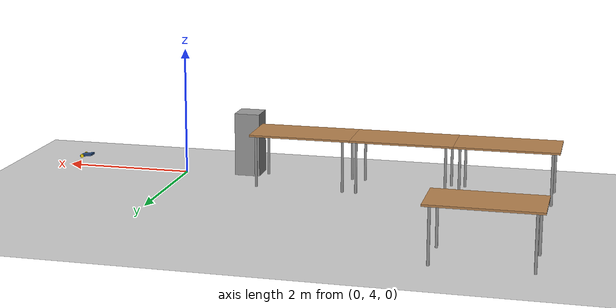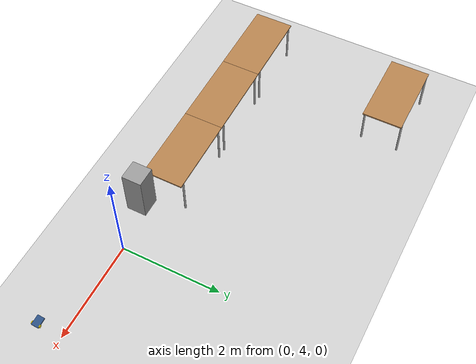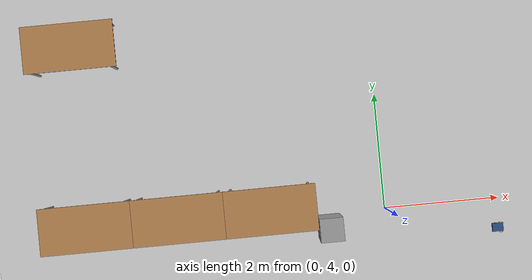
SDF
<sdf version="1.6">
 <world name="default">
  <model name="ground_plane">
   <static>1</static>
   <link name="link">
    <collision name="collision">
     <geometry><plane><normal>0 0 1</normal><size>100 100</size></plane></geometry>
     <surface><friction><ode><mu>100</mu><mu2>50</mu2></ode></friction></surface>
    </collision>
    <visual name="visual">
     <cast_shadows>0</cast_shadows>
     <geometry><plane><normal>0 0 1</normal><size>100 100</size></plane></geometry>
     <material>
      <script><uri>file://media/materials/scripts/gazebo.material</uri><name>Gazebo/Grey</name></script>
     </material>
    </visual>
   </link>
  </model>
  <model name="tablealt_0_clone_1">
   <link name="link">
    <inertial>
     <mass>1</mass>
     <inertia><ixx>1</ixx><ixy>0</ixy><ixz>0</ixz><iyy>1</iyy><iyz>0</iyz><izz>1</izz></inertia>
    </inertial>
    <visual name="back_right_leg">
     <pose>-0.68 -0.38 0.4 0 -0 0</pose>
     <geometry><cylinder><radius>0.02</radius><length>0.8</length></cylinder></geometry>
     <material>
      <script><uri>file://media/materials/scripts/gazebo.material</uri><name>Gazebo/Grey</name></script>
      <shader type="pixel"><normal_map>__default__</normal_map></shader>
      <ambient>0.3 0.3 0.3 1</ambient>
      <diffuse>0.7 0.7 0.7 1</diffuse>
      <specular>0.01 0.01 0.01 1</specular>
      <emissive>0 0 0 1</emissive>
     </material>
    </visual>
    <visual name="back_left_leg">
     <pose>-0.68 0.38 0.4 0 -0 0</pose>
     <geometry><cylinder><radius>0.02</radius><length>0.8</length></cylinder></geometry>
     <material>
      <script><uri>file://media/materials/scripts/gazebo.material</uri><name>Gazebo/Grey</name></script>
      <shader type="pixel"><normal_map>__default__</normal_map></shader>
      <ambient>0.3 0.3 0.3 1</ambient>
      <diffuse>0.7 0.7 0.7 1</diffuse>
      <specular>0.01 0.01 0.01 1</specular>
      <emissive>0 0 0 1</emissive>
     </material>
    </visual>
    <visual name="visual1">
     <pose>0 0 0.8 0 -0 0</pose>
     <geometry><box><size>1.57 0.8 0.03</size></box></geometry>
     <material>
      <script><uri>file://media/materials/scripts/gazebo.material</uri><name>Gazebo/Wood</name></script>
      <shader type="pixel"><normal_map>__default__</normal_map></shader>
      <ambient>0.92 0.92 0.68 1</ambient>
      <diffuse>1 1 1 1</diffuse>
      <specular>0.2 0.2 0.2 1</specular>
      <emissive>0 0 0 1</emissive>
     </material>
    </visual>
    <visual name="front_left_leg">
     <pose>0.68 0.38 0.4 0 -0 0</pose>
     <geometry><cylinder><radius>0.02</radius><length>0.8</length></cylinder></geometry>
     <material>
      <script><uri>file://media/materials/scripts/gazebo.material</uri><name>Gazebo/Grey</name></script>
      <shader type="pixel"><normal_map>__default__</normal_map></shader>
      <ambient>0.3 0.3 0.3 1</ambient>
      <diffuse>0.7 0.7 0.7 1</diffuse>
      <specular>0.01 0.01 0.01 1</specular>
      <emissive>0 0 0 1</emissive>
     </material>
    </visual>
    <visual name="front_right_leg">
     <pose>0.68 -0.38 0.4 0 -0 0</pose>
     <geometry><cylinder><radius>0.02</radius><length>0.8</length></cylinder></geometry>
     <material>
      <script><uri>file://media/materials/scripts/gazebo.material</uri><name>Gazebo/Grey</name></script>
      <shader type="pixel"><normal_map>__default__</normal_map></shader>
      <ambient>0.3 0.3 0.3 1</ambient>
      <diffuse>0.7 0.7 0.7 1</diffuse>
      <specular>0.01 0.01 0.01 1</specular>
      <emissive>0 0 0 1</emissive>
     </material>
    </visual>
    <collision name="front_right_leg">
     <pose>0.68 -0.38 0.4 0 -0 0</pose>
     <geometry><cylinder><radius>0.02</radius><length>0.8</length></cylinder></geometry>
     <surface>
      <friction>
       <ode><mu>1</mu><mu2>1</mu2><fdir1>0 0 0</fdir1><slip1>0</slip1><slip2>0</slip2></ode>
       <torsional>
        <coefficient>1</coefficient>
        <patch_radius>0</patch_radius>
        <surface_radius>0</surface_radius>
        <use_patch_radius>1</use_patch_radius>
        <ode><slip>0</slip></ode>
       </torsional>
      </friction>
      <bounce><restitution_coefficient>0</restitution_coefficient><threshold>1e+06</threshold></bounce>
      <contact>
       <collide_without_contact>0</collide_without_contact>
       <collide_without_contact_bitmask>1</collide_without_contact_bitmask>
       <collide_bitmask>1</collide_bitmask>
       <ode>
        <soft_cfm>0</soft_cfm>
        <soft_erp>0.2</soft_erp>
        <kp>1e+13</kp>
        <kd>1</kd>
        <max_vel>0.01</max_vel>
        <min_depth>0</min_depth>
       </ode>
       <bullet>
        <split_impulse>1</split_impulse>
        <split_impulse_penetration_threshold>-0.01</split_impulse_penetration_threshold>
        <soft_cfm>0</soft_cfm>
        <soft_erp>0.2</soft_erp>
        <kp>1e+13</kp>
        <kd>1</kd>
       </bullet>
      </contact>
     </surface>
    </collision>
    <collision name="surface">
     <pose>0 0 0.8 0 -0 0</pose>
     <geometry><box><size>1.5 0.8 0.03</size></box></geometry>
     <surface>
      <friction>
       <ode><mu>0.6</mu><mu2>0.6</mu2><fdir1>0 0 0</fdir1><slip1>0</slip1><slip2>0</slip2></ode>
       <torsional>
        <coefficient>1</coefficient>
        <patch_radius>0</patch_radius>
        <surface_radius>0</surface_radius>
        <use_patch_radius>1</use_patch_radius>
        <ode><slip>0</slip></ode>
       </torsional>
      </friction>
      <bounce><restitution_coefficient>0</restitution_coefficient><threshold>1e+06</threshold></bounce>
      <contact>
       <collide_without_contact>0</collide_without_contact>
       <collide_without_contact_bitmask>1</collide_without_contact_bitmask>
       <collide_bitmask>1</collide_bitmask>
       <ode>
        <soft_cfm>0</soft_cfm>
        <soft_erp>0.2</soft_erp>
        <kp>1e+13</kp>
        <kd>1</kd>
        <max_vel>0.01</max_vel>
        <min_depth>0</min_depth>
       </ode>
       <bullet>
        <split_impulse>1</split_impulse>
        <split_impulse_penetration_threshold>-0.01</split_impulse_penetration_threshold>
        <soft_cfm>0</soft_cfm>
        <soft_erp>0.2</soft_erp>
        <kp>1e+13</kp>
        <kd>1</kd>
       </bullet>
      </contact>
     </surface>
    </collision>
    <collision name="front_left_leg">
     <pose>0.68 0.38 0.4 0 -0 0</pose>
     <geometry><cylinder><radius>0.02</radius><length>0.8</length></cylinder></geometry>
     <surface>
      <friction>
       <ode><mu>1</mu><mu2>1</mu2><fdir1>0 0 0</fdir1><slip1>0</slip1><slip2>0</slip2></ode>
       <torsional>
        <coefficient>1</coefficient>
        <patch_radius>0</patch_radius>
        <surface_radius>0</surface_radius>
        <use_patch_radius>1</use_patch_radius>
        <ode><slip>0</slip></ode>
       </torsional>
      </friction>
      <bounce><restitution_coefficient>0</restitution_coefficient><threshold>1e+06</threshold></bounce>
      <contact>
       <collide_without_contact>0</collide_without_contact>
       <collide_without_contact_bitmask>1</collide_without_contact_bitmask>
       <collide_bitmask>1</collide_bitmask>
       <ode>
        <soft_cfm>0</soft_cfm>
        <soft_erp>0.2</soft_erp>
        <kp>1e+13</kp>
        <kd>1</kd>
        <max_vel>0.01</max_vel>
        <min_depth>0</min_depth>
       </ode>
       <bullet>
        <split_impulse>1</split_impulse>
        <split_impulse_penetration_threshold>-0.01</split_impulse_penetration_threshold>
        <soft_cfm>0</soft_cfm>
        <soft_erp>0.2</soft_erp>
        <kp>1e+13</kp>
        <kd>1</kd>
       </bullet>
      </contact>
     </surface>
    </collision>
    <collision name="back_left_leg">
     <pose>-0.68 0.38 0.4 0 -0 0</pose>
     <geometry><cylinder><radius>0.02</radius><length>0.8</length></cylinder></geometry>
     <surface>
      <friction>
       <ode><mu>1</mu><mu2>1</mu2><fdir1>0 0 0</fdir1><slip1>0</slip1><slip2>0</slip2></ode>
       <torsional>
        <coefficient>1</coefficient>
        <patch_radius>0</patch_radius>
        <surface_radius>0</surface_radius>
        <use_patch_radius>1</use_patch_radius>
        <ode><slip>0</slip></ode>
       </torsional>
      </friction>
      <bounce><restitution_coefficient>0</restitution_coefficient><threshold>1e+06</threshold></bounce>
      <contact>
       <collide_without_contact>0</collide_without_contact>
       <collide_without_contact_bitmask>1</collide_without_contact_bitmask>
       <collide_bitmask>1</collide_bitmask>
       <ode>
        <soft_cfm>0</soft_cfm>
        <soft_erp>0.2</soft_erp>
        <kp>1e+13</kp>
        <kd>1</kd>
        <max_vel>0.01</max_vel>
        <min_depth>0</min_depth>
       </ode>
       <bullet>
        <split_impulse>1</split_impulse>
        <split_impulse_penetration_threshold>-0.01</split_impulse_penetration_threshold>
        <soft_cfm>0</soft_cfm>
        <soft_erp>0.2</soft_erp>
        <kp>1e+13</kp>
        <kd>1</kd>
       </bullet>
      </contact>
     </surface>
    </collision>
    <collision name="back_right_leg">
     <pose>-0.68 -0.38 0.4 0 -0 0</pose>
     <geometry><cylinder><radius>0.02</radius><length>0.8</length></cylinder></geometry>
     <surface>
      <friction>
       <ode><mu>1</mu><mu2>1</mu2><fdir1>0 0 0</fdir1><slip1>0</slip1><slip2>0</slip2></ode>
       <torsional>
        <coefficient>1</coefficient>
        <patch_radius>0</patch_radius>
        <surface_radius>0</surface_radius>
        <use_patch_radius>1</use_patch_radius>
        <ode><slip>0</slip></ode>
       </torsional>
      </friction>
      <bounce><restitution_coefficient>0</restitution_coefficient><threshold>1e+06</threshold></bounce>
      <contact>
       <collide_without_contact>0</collide_without_contact>
       <collide_without_contact_bitmask>1</collide_without_contact_bitmask>
       <collide_bitmask>1</collide_bitmask>
       <ode>
        <soft_cfm>0</soft_cfm>
        <soft_erp>0.2</soft_erp>
        <kp>1e+13</kp>
        <kd>1</kd>
        <max_vel>0.01</max_vel>
        <min_depth>0</min_depth>
       </ode>
       <bullet>
        <split_impulse>1</split_impulse>
        <split_impulse_penetration_threshold>-0.01</split_impulse_penetration_threshold>
        <soft_cfm>0</soft_cfm>
        <soft_erp>0.2</soft_erp>
        <kp>1e+13</kp>
        <kd>1</kd>
       </bullet>
      </contact>
     </surface>
    </collision>
   </link>
   <static>1</static>
   <pose>-5.13 7.27 0 0 -0 0</pose>
  </model>
  <model name="tablealt_0_clone_4">
   <link name="link">
    <inertial>
     <mass>1</mass>
     <inertia><ixx>1</ixx><ixy>0</ixy><ixz>0</ixz><iyy>1</iyy><iyz>0</iyz><izz>1</izz></inertia>
    </inertial>
    <visual name="back_right_leg">
     <pose>-0.68 -0.38 0.4 0 -0 0</pose>
     <geometry><cylinder><radius>0.02</radius><length>0.8</length></cylinder></geometry>
     <material>
      <script><uri>file://media/materials/scripts/gazebo.material</uri><name>Gazebo/Grey</name></script>
      <shader type="pixel"><normal_map>__default__</normal_map></shader>
      <ambient>0.3 0.3 0.3 1</ambient>
      <diffuse>0.7 0.7 0.7 1</diffuse>
      <specular>0.01 0.01 0.01 1</specular>
      <emissive>0 0 0 1</emissive>
     </material>
    </visual>
    <visual name="back_left_leg">
     <pose>-0.68 0.38 0.4 0 -0 0</pose>
     <geometry><cylinder><radius>0.02</radius><length>0.8</length></cylinder></geometry>
     <material>
      <script><uri>file://media/materials/scripts/gazebo.material</uri><name>Gazebo/Grey</name></script>
      <shader type="pixel"><normal_map>__default__</normal_map></shader>
      <ambient>0.3 0.3 0.3 1</ambient>
      <diffuse>0.7 0.7 0.7 1</diffuse>
      <specular>0.01 0.01 0.01 1</specular>
      <emissive>0 0 0 1</emissive>
     </material>
    </visual>
    <visual name="visual1">
     <pose>0 0 0.8 0 -0 0</pose>
     <geometry><box><size>1.57 0.8 0.03</size></box></geometry>
     <material>
      <script><uri>file://media/materials/scripts/gazebo.material</uri><name>Gazebo/Wood</name></script>
      <shader type="pixel"><normal_map>__default__</normal_map></shader>
      <ambient>0.92 0.92 0.68 1</ambient>
      <diffuse>1 1 1 1</diffuse>
      <specular>0.2 0.2 0.2 1</specular>
      <emissive>0 0 0 1</emissive>
     </material>
    </visual>
    <visual name="front_left_leg">
     <pose>0.68 0.38 0.4 0 -0 0</pose>
     <geometry><cylinder><radius>0.02</radius><length>0.8</length></cylinder></geometry>
     <material>
      <script><uri>file://media/materials/scripts/gazebo.material</uri><name>Gazebo/Grey</name></script>
      <shader type="pixel"><normal_map>__default__</normal_map></shader>
      <ambient>0.3 0.3 0.3 1</ambient>
      <diffuse>0.7 0.7 0.7 1</diffuse>
      <specular>0.01 0.01 0.01 1</specular>
      <emissive>0 0 0 1</emissive>
     </material>
    </visual>
    <visual name="front_right_leg">
     <pose>0.68 -0.38 0.4 0 -0 0</pose>
     <geometry><cylinder><radius>0.02</radius><length>0.8</length></cylinder></geometry>
     <material>
      <script><uri>file://media/materials/scripts/gazebo.material</uri><name>Gazebo/Grey</name></script>
      <shader type="pixel"><normal_map>__default__</normal_map></shader>
      <ambient>0.3 0.3 0.3 1</ambient>
      <diffuse>0.7 0.7 0.7 1</diffuse>
      <specular>0.01 0.01 0.01 1</specular>
      <emissive>0 0 0 1</emissive>
     </material>
    </visual>
    <collision name="front_right_leg">
     <pose>0.68 -0.38 0.4 0 -0 0</pose>
     <geometry><cylinder><radius>0.02</radius><length>0.8</length></cylinder></geometry>
     <surface>
      <friction>
       <ode><mu>1</mu><mu2>1</mu2><fdir1>0 0 0</fdir1><slip1>0</slip1><slip2>0</slip2></ode>
       <torsional>
        <coefficient>1</coefficient>
        <patch_radius>0</patch_radius>
        <surface_radius>0</surface_radius>
        <use_patch_radius>1</use_patch_radius>
        <ode><slip>0</slip></ode>
       </torsional>
      </friction>
      <bounce><restitution_coefficient>0</restitution_coefficient><threshold>1e+06</threshold></bounce>
      <contact>
       <collide_without_contact>0</collide_without_contact>
       <collide_without_contact_bitmask>1</collide_without_contact_bitmask>
       <collide_bitmask>1</collide_bitmask>
       <ode>
        <soft_cfm>0</soft_cfm>
        <soft_erp>0.2</soft_erp>
        <kp>1e+13</kp>
        <kd>1</kd>
        <max_vel>0.01</max_vel>
        <min_depth>0</min_depth>
       </ode>
       <bullet>
        <split_impulse>1</split_impulse>
        <split_impulse_penetration_threshold>-0.01</split_impulse_penetration_threshold>
        <soft_cfm>0</soft_cfm>
        <soft_erp>0.2</soft_erp>
        <kp>1e+13</kp>
        <kd>1</kd>
       </bullet>
      </contact>
     </surface>
    </collision>
    <collision name="surface">
     <pose>0 0 0.8 0 -0 0</pose>
     <geometry><box><size>1.5 0.8 0.03</size></box></geometry>
     <surface>
      <friction>
       <ode><mu>0.6</mu><mu2>0.6</mu2><fdir1>0 0 0</fdir1><slip1>0</slip1><slip2>0</slip2></ode>
       <torsional>
        <coefficient>1</coefficient>
        <patch_radius>0</patch_radius>
        <surface_radius>0</surface_radius>
        <use_patch_radius>1</use_patch_radius>
        <ode><slip>0</slip></ode>
       </torsional>
      </friction>
      <bounce><restitution_coefficient>0</restitution_coefficient><threshold>1e+06</threshold></bounce>
      <contact>
       <collide_without_contact>0</collide_without_contact>
       <collide_without_contact_bitmask>1</collide_without_contact_bitmask>
       <collide_bitmask>1</collide_bitmask>
       <ode>
        <soft_cfm>0</soft_cfm>
        <soft_erp>0.2</soft_erp>
        <kp>1e+13</kp>
        <kd>1</kd>
        <max_vel>0.01</max_vel>
        <min_depth>0</min_depth>
       </ode>
       <bullet>
        <split_impulse>1</split_impulse>
        <split_impulse_penetration_threshold>-0.01</split_impulse_penetration_threshold>
        <soft_cfm>0</soft_cfm>
        <soft_erp>0.2</soft_erp>
        <kp>1e+13</kp>
        <kd>1</kd>
       </bullet>
      </contact>
     </surface>
    </collision>
    <collision name="front_left_leg">
     <pose>0.68 0.38 0.4 0 -0 0</pose>
     <geometry><cylinder><radius>0.02</radius><length>0.8</length></cylinder></geometry>
     <surface>
      <friction>
       <ode><mu>1</mu><mu2>1</mu2><fdir1>0 0 0</fdir1><slip1>0</slip1><slip2>0</slip2></ode>
       <torsional>
        <coefficient>1</coefficient>
        <patch_radius>0</patch_radius>
        <surface_radius>0</surface_radius>
        <use_patch_radius>1</use_patch_radius>
        <ode><slip>0</slip></ode>
       </torsional>
      </friction>
      <bounce><restitution_coefficient>0</restitution_coefficient><threshold>1e+06</threshold></bounce>
      <contact>
       <collide_without_contact>0</collide_without_contact>
       <collide_without_contact_bitmask>1</collide_without_contact_bitmask>
       <collide_bitmask>1</collide_bitmask>
       <ode>
        <soft_cfm>0</soft_cfm>
        <soft_erp>0.2</soft_erp>
        <kp>1e+13</kp>
        <kd>1</kd>
        <max_vel>0.01</max_vel>
        <min_depth>0</min_depth>
       </ode>
       <bullet>
        <split_impulse>1</split_impulse>
        <split_impulse_penetration_threshold>-0.01</split_impulse_penetration_threshold>
        <soft_cfm>0</soft_cfm>
        <soft_erp>0.2</soft_erp>
        <kp>1e+13</kp>
        <kd>1</kd>
       </bullet>
      </contact>
     </surface>
    </collision>
    <collision name="back_left_leg">
     <pose>-0.68 0.38 0.4 0 -0 0</pose>
     <geometry><cylinder><radius>0.02</radius><length>0.8</length></cylinder></geometry>
     <surface>
      <friction>
       <ode><mu>1</mu><mu2>1</mu2><fdir1>0 0 0</fdir1><slip1>0</slip1><slip2>0</slip2></ode>
       <torsional>
        <coefficient>1</coefficient>
        <patch_radius>0</patch_radius>
        <surface_radius>0</surface_radius>
        <use_patch_radius>1</use_patch_radius>
        <ode><slip>0</slip></ode>
       </torsional>
      </friction>
      <bounce><restitution_coefficient>0</restitution_coefficient><threshold>1e+06</threshold></bounce>
      <contact>
       <collide_without_contact>0</collide_without_contact>
       <collide_without_contact_bitmask>1</collide_without_contact_bitmask>
       <collide_bitmask>1</collide_bitmask>
       <ode>
        <soft_cfm>0</soft_cfm>
        <soft_erp>0.2</soft_erp>
        <kp>1e+13</kp>
        <kd>1</kd>
        <max_vel>0.01</max_vel>
        <min_depth>0</min_depth>
       </ode>
       <bullet>
        <split_impulse>1</split_impulse>
        <split_impulse_penetration_threshold>-0.01</split_impulse_penetration_threshold>
        <soft_cfm>0</soft_cfm>
        <soft_erp>0.2</soft_erp>
        <kp>1e+13</kp>
        <kd>1</kd>
       </bullet>
      </contact>
     </surface>
    </collision>
    <collision name="back_right_leg">
     <pose>-0.68 -0.38 0.4 0 -0 0</pose>
     <geometry><cylinder><radius>0.02</radius><length>0.8</length></cylinder></geometry>
     <surface>
      <friction>
       <ode><mu>1</mu><mu2>1</mu2><fdir1>0 0 0</fdir1><slip1>0</slip1><slip2>0</slip2></ode>
       <torsional>
        <coefficient>1</coefficient>
        <patch_radius>0</patch_radius>
        <surface_radius>0</surface_radius>
        <use_patch_radius>1</use_patch_radius>
        <ode><slip>0</slip></ode>
       </torsional>
      </friction>
      <bounce><restitution_coefficient>0</restitution_coefficient><threshold>1e+06</threshold></bounce>
      <contact>
       <collide_without_contact>0</collide_without_contact>
       <collide_without_contact_bitmask>1</collide_without_contact_bitmask>
       <collide_bitmask>1</collide_bitmask>
       <ode>
        <soft_cfm>0</soft_cfm>
        <soft_erp>0.2</soft_erp>
        <kp>1e+13</kp>
        <kd>1</kd>
        <max_vel>0.01</max_vel>
        <min_depth>0</min_depth>
       </ode>
       <bullet>
        <split_impulse>1</split_impulse>
        <split_impulse_penetration_threshold>-0.01</split_impulse_penetration_threshold>
        <soft_cfm>0</soft_cfm>
        <soft_erp>0.2</soft_erp>
        <kp>1e+13</kp>
        <kd>1</kd>
       </bullet>
      </contact>
     </surface>
    </collision>
   </link>
   <static>1</static>
   <pose>-5.13 4.19 0 0 -0 0</pose>
  </model>
  <model name="tablealt_0_clone_5">
   <link name="link">
    <inertial>
     <mass>1</mass>
     <inertia><ixx>1</ixx><ixy>0</ixy><ixz>0</ixz><iyy>1</iyy><iyz>0</iyz><izz>1</izz></inertia>
    </inertial>
    <visual name="back_right_leg">
     <pose>-0.68 -0.38 0.4 0 -0 0</pose>
     <geometry><cylinder><radius>0.02</radius><length>0.8</length></cylinder></geometry>
     <material>
      <script><uri>file://media/materials/scripts/gazebo.material</uri><name>Gazebo/Grey</name></script>
      <shader type="pixel"><normal_map>__default__</normal_map></shader>
      <ambient>0.3 0.3 0.3 1</ambient>
      <diffuse>0.7 0.7 0.7 1</diffuse>
      <specular>0.01 0.01 0.01 1</specular>
      <emissive>0 0 0 1</emissive>
     </material>
    </visual>
    <visual name="back_left_leg">
     <pose>-0.68 0.38 0.4 0 -0 0</pose>
     <geometry><cylinder><radius>0.02</radius><length>0.8</length></cylinder></geometry>
     <material>
      <script><uri>file://media/materials/scripts/gazebo.material</uri><name>Gazebo/Grey</name></script>
      <shader type="pixel"><normal_map>__default__</normal_map></shader>
      <ambient>0.3 0.3 0.3 1</ambient>
      <diffuse>0.7 0.7 0.7 1</diffuse>
      <specular>0.01 0.01 0.01 1</specular>
      <emissive>0 0 0 1</emissive>
     </material>
    </visual>
    <visual name="visual1">
     <pose>0 0 0.8 0 -0 0</pose>
     <geometry><box><size>1.57 0.8 0.03</size></box></geometry>
     <material>
      <script><uri>file://media/materials/scripts/gazebo.material</uri><name>Gazebo/Wood</name></script>
      <shader type="pixel"><normal_map>__default__</normal_map></shader>
      <ambient>0.92 0.92 0.68 1</ambient>
      <diffuse>1 1 1 1</diffuse>
      <specular>0.2 0.2 0.2 1</specular>
      <emissive>0 0 0 1</emissive>
     </material>
    </visual>
    <visual name="front_left_leg">
     <pose>0.68 0.38 0.4 0 -0 0</pose>
     <geometry><cylinder><radius>0.02</radius><length>0.8</length></cylinder></geometry>
     <material>
      <script><uri>file://media/materials/scripts/gazebo.material</uri><name>Gazebo/Grey</name></script>
      <shader type="pixel"><normal_map>__default__</normal_map></shader>
      <ambient>0.3 0.3 0.3 1</ambient>
      <diffuse>0.7 0.7 0.7 1</diffuse>
      <specular>0.01 0.01 0.01 1</specular>
      <emissive>0 0 0 1</emissive>
     </material>
    </visual>
    <visual name="front_right_leg">
     <pose>0.68 -0.38 0.4 0 -0 0</pose>
     <geometry><cylinder><radius>0.02</radius><length>0.8</length></cylinder></geometry>
     <material>
      <script><uri>file://media/materials/scripts/gazebo.material</uri><name>Gazebo/Grey</name></script>
      <shader type="pixel"><normal_map>__default__</normal_map></shader>
      <ambient>0.3 0.3 0.3 1</ambient>
      <diffuse>0.7 0.7 0.7 1</diffuse>
      <specular>0.01 0.01 0.01 1</specular>
      <emissive>0 0 0 1</emissive>
     </material>
    </visual>
    <collision name="front_right_leg">
     <pose>0.68 -0.38 0.4 0 -0 0</pose>
     <geometry><cylinder><radius>0.02</radius><length>0.8</length></cylinder></geometry>
     <surface>
      <friction>
       <ode><mu>1</mu><mu2>1</mu2><fdir1>0 0 0</fdir1><slip1>0</slip1><slip2>0</slip2></ode>
       <torsional>
        <coefficient>1</coefficient>
        <patch_radius>0</patch_radius>
        <surface_radius>0</surface_radius>
        <use_patch_radius>1</use_patch_radius>
        <ode><slip>0</slip></ode>
       </torsional>
      </friction>
      <bounce><restitution_coefficient>0</restitution_coefficient><threshold>1e+06</threshold></bounce>
      <contact>
       <collide_without_contact>0</collide_without_contact>
       <collide_without_contact_bitmask>1</collide_without_contact_bitmask>
       <collide_bitmask>1</collide_bitmask>
       <ode>
        <soft_cfm>0</soft_cfm>
        <soft_erp>0.2</soft_erp>
        <kp>1e+13</kp>
        <kd>1</kd>
        <max_vel>0.01</max_vel>
        <min_depth>0</min_depth>
       </ode>
       <bullet>
        <split_impulse>1</split_impulse>
        <split_impulse_penetration_threshold>-0.01</split_impulse_penetration_threshold>
        <soft_cfm>0</soft_cfm>
        <soft_erp>0.2</soft_erp>
        <kp>1e+13</kp>
        <kd>1</kd>
       </bullet>
      </contact>
     </surface>
    </collision>
    <collision name="surface">
     <pose>0 0 0.8 0 -0 0</pose>
     <geometry><box><size>1.5 0.8 0.03</size></box></geometry>
     <surface>
      <friction>
       <ode><mu>0.6</mu><mu2>0.6</mu2><fdir1>0 0 0</fdir1><slip1>0</slip1><slip2>0</slip2></ode>
       <torsional>
        <coefficient>1</coefficient>
        <patch_radius>0</patch_radius>
        <surface_radius>0</surface_radius>
        <use_patch_radius>1</use_patch_radius>
        <ode><slip>0</slip></ode>
       </torsional>
      </friction>
      <bounce><restitution_coefficient>0</restitution_coefficient><threshold>1e+06</threshold></bounce>
      <contact>
       <collide_without_contact>0</collide_without_contact>
       <collide_without_contact_bitmask>1</collide_without_contact_bitmask>
       <collide_bitmask>1</collide_bitmask>
       <ode>
        <soft_cfm>0</soft_cfm>
        <soft_erp>0.2</soft_erp>
        <kp>1e+13</kp>
        <kd>1</kd>
        <max_vel>0.01</max_vel>
        <min_depth>0</min_depth>
       </ode>
       <bullet>
        <split_impulse>1</split_impulse>
        <split_impulse_penetration_threshold>-0.01</split_impulse_penetration_threshold>
        <soft_cfm>0</soft_cfm>
        <soft_erp>0.2</soft_erp>
        <kp>1e+13</kp>
        <kd>1</kd>
       </bullet>
      </contact>
     </surface>
    </collision>
    <collision name="front_left_leg">
     <pose>0.68 0.38 0.4 0 -0 0</pose>
     <geometry><cylinder><radius>0.02</radius><length>0.8</length></cylinder></geometry>
     <surface>
      <friction>
       <ode><mu>1</mu><mu2>1</mu2><fdir1>0 0 0</fdir1><slip1>0</slip1><slip2>0</slip2></ode>
       <torsional>
        <coefficient>1</coefficient>
        <patch_radius>0</patch_radius>
        <surface_radius>0</surface_radius>
        <use_patch_radius>1</use_patch_radius>
        <ode><slip>0</slip></ode>
       </torsional>
      </friction>
      <bounce><restitution_coefficient>0</restitution_coefficient><threshold>1e+06</threshold></bounce>
      <contact>
       <collide_without_contact>0</collide_without_contact>
       <collide_without_contact_bitmask>1</collide_without_contact_bitmask>
       <collide_bitmask>1</collide_bitmask>
       <ode>
        <soft_cfm>0</soft_cfm>
        <soft_erp>0.2</soft_erp>
        <kp>1e+13</kp>
        <kd>1</kd>
        <max_vel>0.01</max_vel>
        <min_depth>0</min_depth>
       </ode>
       <bullet>
        <split_impulse>1</split_impulse>
        <split_impulse_penetration_threshold>-0.01</split_impulse_penetration_threshold>
        <soft_cfm>0</soft_cfm>
        <soft_erp>0.2</soft_erp>
        <kp>1e+13</kp>
        <kd>1</kd>
       </bullet>
      </contact>
     </surface>
    </collision>
    <collision name="back_left_leg">
     <pose>-0.68 0.38 0.4 0 -0 0</pose>
     <geometry><cylinder><radius>0.02</radius><length>0.8</length></cylinder></geometry>
     <surface>
      <friction>
       <ode><mu>1</mu><mu2>1</mu2><fdir1>0 0 0</fdir1><slip1>0</slip1><slip2>0</slip2></ode>
       <torsional>
        <coefficient>1</coefficient>
        <patch_radius>0</patch_radius>
        <surface_radius>0</surface_radius>
        <use_patch_radius>1</use_patch_radius>
        <ode><slip>0</slip></ode>
       </torsional>
      </friction>
      <bounce><restitution_coefficient>0</restitution_coefficient><threshold>1e+06</threshold></bounce>
      <contact>
       <collide_without_contact>0</collide_without_contact>
       <collide_without_contact_bitmask>1</collide_without_contact_bitmask>
       <collide_bitmask>1</collide_bitmask>
       <ode>
        <soft_cfm>0</soft_cfm>
        <soft_erp>0.2</soft_erp>
        <kp>1e+13</kp>
        <kd>1</kd>
        <max_vel>0.01</max_vel>
        <min_depth>0</min_depth>
       </ode>
       <bullet>
        <split_impulse>1</split_impulse>
        <split_impulse_penetration_threshold>-0.01</split_impulse_penetration_threshold>
        <soft_cfm>0</soft_cfm>
        <soft_erp>0.2</soft_erp>
        <kp>1e+13</kp>
        <kd>1</kd>
       </bullet>
      </contact>
     </surface>
    </collision>
    <collision name="back_right_leg">
     <pose>-0.68 -0.38 0.4 0 -0 0</pose>
     <geometry><cylinder><radius>0.02</radius><length>0.8</length></cylinder></geometry>
     <surface>
      <friction>
       <ode><mu>1</mu><mu2>1</mu2><fdir1>0 0 0</fdir1><slip1>0</slip1><slip2>0</slip2></ode>
       <torsional>
        <coefficient>1</coefficient>
        <patch_radius>0</patch_radius>
        <surface_radius>0</surface_radius>
        <use_patch_radius>1</use_patch_radius>
        <ode><slip>0</slip></ode>
       </torsional>
      </friction>
      <bounce><restitution_coefficient>0</restitution_coefficient><threshold>1e+06</threshold></bounce>
      <contact>
       <collide_without_contact>0</collide_without_contact>
       <collide_without_contact_bitmask>1</collide_without_contact_bitmask>
       <collide_bitmask>1</collide_bitmask>
       <ode>
        <soft_cfm>0</soft_cfm>
        <soft_erp>0.2</soft_erp>
        <kp>1e+13</kp>
        <kd>1</kd>
        <max_vel>0.01</max_vel>
        <min_depth>0</min_depth>
       </ode>
       <bullet>
        <split_impulse>1</split_impulse>
        <split_impulse_penetration_threshold>-0.01</split_impulse_penetration_threshold>
        <soft_cfm>0</soft_cfm>
        <soft_erp>0.2</soft_erp>
        <kp>1e+13</kp>
        <kd>1</kd>
       </bullet>
      </contact>
     </surface>
    </collision>
   </link>
   <static>1</static>
   <pose>-3.56 4.19 0 0 -0 0</pose>
  </model>
  <model name="tablealt_0_clone_6">
   <link name="link">
    <inertial>
     <mass>1</mass>
     <inertia><ixx>1</ixx><ixy>0</ixy><ixz>0</ixz><iyy>1</iyy><iyz>0</iyz><izz>1</izz></inertia>
    </inertial>
    <visual name="back_right_leg">
     <pose>-0.68 -0.38 0.4 0 -0 0</pose>
     <geometry><cylinder><radius>0.02</radius><length>0.8</length></cylinder></geometry>
     <material>
      <script><uri>file://media/materials/scripts/gazebo.material</uri><name>Gazebo/Grey</name></script>
      <shader type="pixel"><normal_map>__default__</normal_map></shader>
      <ambient>0.3 0.3 0.3 1</ambient>
      <diffuse>0.7 0.7 0.7 1</diffuse>
      <specular>0.01 0.01 0.01 1</specular>
      <emissive>0 0 0 1</emissive>
     </material>
    </visual>
    <visual name="back_left_leg">
     <pose>-0.68 0.38 0.4 0 -0 0</pose>
     <geometry><cylinder><radius>0.02</radius><length>0.8</length></cylinder></geometry>
     <material>
      <script><uri>file://media/materials/scripts/gazebo.material</uri><name>Gazebo/Grey</name></script>
      <shader type="pixel"><normal_map>__default__</normal_map></shader>
      <ambient>0.3 0.3 0.3 1</ambient>
      <diffuse>0.7 0.7 0.7 1</diffuse>
      <specular>0.01 0.01 0.01 1</specular>
      <emissive>0 0 0 1</emissive>
     </material>
    </visual>
    <visual name="visual1">
     <pose>0 0 0.8 0 -0 0</pose>
     <geometry><box><size>1.57 0.8 0.03</size></box></geometry>
     <material>
      <script><uri>file://media/materials/scripts/gazebo.material</uri><name>Gazebo/Wood</name></script>
      <shader type="pixel"><normal_map>__default__</normal_map></shader>
      <ambient>0.92 0.92 0.68 1</ambient>
      <diffuse>1 1 1 1</diffuse>
      <specular>0.2 0.2 0.2 1</specular>
      <emissive>0 0 0 1</emissive>
     </material>
    </visual>
    <visual name="front_left_leg">
     <pose>0.68 0.38 0.4 0 -0 0</pose>
     <geometry><cylinder><radius>0.02</radius><length>0.8</length></cylinder></geometry>
     <material>
      <script><uri>file://media/materials/scripts/gazebo.material</uri><name>Gazebo/Grey</name></script>
      <shader type="pixel"><normal_map>__default__</normal_map></shader>
      <ambient>0.3 0.3 0.3 1</ambient>
      <diffuse>0.7 0.7 0.7 1</diffuse>
      <specular>0.01 0.01 0.01 1</specular>
      <emissive>0 0 0 1</emissive>
     </material>
    </visual>
    <visual name="front_right_leg">
     <pose>0.68 -0.38 0.4 0 -0 0</pose>
     <geometry><cylinder><radius>0.02</radius><length>0.8</length></cylinder></geometry>
     <material>
      <script><uri>file://media/materials/scripts/gazebo.material</uri><name>Gazebo/Grey</name></script>
      <shader type="pixel"><normal_map>__default__</normal_map></shader>
      <ambient>0.3 0.3 0.3 1</ambient>
      <diffuse>0.7 0.7 0.7 1</diffuse>
      <specular>0.01 0.01 0.01 1</specular>
      <emissive>0 0 0 1</emissive>
     </material>
    </visual>
    <collision name="front_right_leg">
     <pose>0.68 -0.38 0.4 0 -0 0</pose>
     <geometry><cylinder><radius>0.02</radius><length>0.8</length></cylinder></geometry>
     <surface>
      <friction>
       <ode><mu>1</mu><mu2>1</mu2><fdir1>0 0 0</fdir1><slip1>0</slip1><slip2>0</slip2></ode>
       <torsional>
        <coefficient>1</coefficient>
        <patch_radius>0</patch_radius>
        <surface_radius>0</surface_radius>
        <use_patch_radius>1</use_patch_radius>
        <ode><slip>0</slip></ode>
       </torsional>
      </friction>
      <bounce><restitution_coefficient>0</restitution_coefficient><threshold>1e+06</threshold></bounce>
      <contact>
       <collide_without_contact>0</collide_without_contact>
       <collide_without_contact_bitmask>1</collide_without_contact_bitmask>
       <collide_bitmask>1</collide_bitmask>
       <ode>
        <soft_cfm>0</soft_cfm>
        <soft_erp>0.2</soft_erp>
        <kp>1e+13</kp>
        <kd>1</kd>
        <max_vel>0.01</max_vel>
        <min_depth>0</min_depth>
       </ode>
       <bullet>
        <split_impulse>1</split_impulse>
        <split_impulse_penetration_threshold>-0.01</split_impulse_penetration_threshold>
        <soft_cfm>0</soft_cfm>
        <soft_erp>0.2</soft_erp>
        <kp>1e+13</kp>
        <kd>1</kd>
       </bullet>
      </contact>
     </surface>
    </collision>
    <collision name="surface">
     <pose>0 0 0.8 0 -0 0</pose>
     <geometry><box><size>1.5 0.8 0.03</size></box></geometry>
     <surface>
      <friction>
       <ode><mu>0.6</mu><mu2>0.6</mu2><fdir1>0 0 0</fdir1><slip1>0</slip1><slip2>0</slip2></ode>
       <torsional>
        <coefficient>1</coefficient>
        <patch_radius>0</patch_radius>
        <surface_radius>0</surface_radius>
        <use_patch_radius>1</use_patch_radius>
        <ode><slip>0</slip></ode>
       </torsional>
      </friction>
      <bounce><restitution_coefficient>0</restitution_coefficient><threshold>1e+06</threshold></bounce>
      <contact>
       <collide_without_contact>0</collide_without_contact>
       <collide_without_contact_bitmask>1</collide_without_contact_bitmask>
       <collide_bitmask>1</collide_bitmask>
       <ode>
        <soft_cfm>0</soft_cfm>
        <soft_erp>0.2</soft_erp>
        <kp>1e+13</kp>
        <kd>1</kd>
        <max_vel>0.01</max_vel>
        <min_depth>0</min_depth>
       </ode>
       <bullet>
        <split_impulse>1</split_impulse>
        <split_impulse_penetration_threshold>-0.01</split_impulse_penetration_threshold>
        <soft_cfm>0</soft_cfm>
        <soft_erp>0.2</soft_erp>
        <kp>1e+13</kp>
        <kd>1</kd>
       </bullet>
      </contact>
     </surface>
    </collision>
    <collision name="front_left_leg">
     <pose>0.68 0.38 0.4 0 -0 0</pose>
     <geometry><cylinder><radius>0.02</radius><length>0.8</length></cylinder></geometry>
     <surface>
      <friction>
       <ode><mu>1</mu><mu2>1</mu2><fdir1>0 0 0</fdir1><slip1>0</slip1><slip2>0</slip2></ode>
       <torsional>
        <coefficient>1</coefficient>
        <patch_radius>0</patch_radius>
        <surface_radius>0</surface_radius>
        <use_patch_radius>1</use_patch_radius>
        <ode><slip>0</slip></ode>
       </torsional>
      </friction>
      <bounce><restitution_coefficient>0</restitution_coefficient><threshold>1e+06</threshold></bounce>
      <contact>
       <collide_without_contact>0</collide_without_contact>
       <collide_without_contact_bitmask>1</collide_without_contact_bitmask>
       <collide_bitmask>1</collide_bitmask>
       <ode>
        <soft_cfm>0</soft_cfm>
        <soft_erp>0.2</soft_erp>
        <kp>1e+13</kp>
        <kd>1</kd>
        <max_vel>0.01</max_vel>
        <min_depth>0</min_depth>
       </ode>
       <bullet>
        <split_impulse>1</split_impulse>
        <split_impulse_penetration_threshold>-0.01</split_impulse_penetration_threshold>
        <soft_cfm>0</soft_cfm>
        <soft_erp>0.2</soft_erp>
        <kp>1e+13</kp>
        <kd>1</kd>
       </bullet>
      </contact>
     </surface>
    </collision>
    <collision name="back_left_leg">
     <pose>-0.68 0.38 0.4 0 -0 0</pose>
     <geometry><cylinder><radius>0.02</radius><length>0.8</length></cylinder></geometry>
     <surface>
      <friction>
       <ode><mu>1</mu><mu2>1</mu2><fdir1>0 0 0</fdir1><slip1>0</slip1><slip2>0</slip2></ode>
       <torsional>
        <coefficient>1</coefficient>
        <patch_radius>0</patch_radius>
        <surface_radius>0</surface_radius>
        <use_patch_radius>1</use_patch_radius>
        <ode><slip>0</slip></ode>
       </torsional>
      </friction>
      <bounce><restitution_coefficient>0</restitution_coefficient><threshold>1e+06</threshold></bounce>
      <contact>
       <collide_without_contact>0</collide_without_contact>
       <collide_without_contact_bitmask>1</collide_without_contact_bitmask>
       <collide_bitmask>1</collide_bitmask>
       <ode>
        <soft_cfm>0</soft_cfm>
        <soft_erp>0.2</soft_erp>
        <kp>1e+13</kp>
        <kd>1</kd>
        <max_vel>0.01</max_vel>
        <min_depth>0</min_depth>
       </ode>
       <bullet>
        <split_impulse>1</split_impulse>
        <split_impulse_penetration_threshold>-0.01</split_impulse_penetration_threshold>
        <soft_cfm>0</soft_cfm>
        <soft_erp>0.2</soft_erp>
        <kp>1e+13</kp>
        <kd>1</kd>
       </bullet>
      </contact>
     </surface>
    </collision>
    <collision name="back_right_leg">
     <pose>-0.68 -0.38 0.4 0 -0 0</pose>
     <geometry><cylinder><radius>0.02</radius><length>0.8</length></cylinder></geometry>
     <surface>
      <friction>
       <ode><mu>1</mu><mu2>1</mu2><fdir1>0 0 0</fdir1><slip1>0</slip1><slip2>0</slip2></ode>
       <torsional>
        <coefficient>1</coefficient>
        <patch_radius>0</patch_radius>
        <surface_radius>0</surface_radius>
        <use_patch_radius>1</use_patch_radius>
        <ode><slip>0</slip></ode>
       </torsional>
      </friction>
      <bounce><restitution_coefficient>0</restitution_coefficient><threshold>1e+06</threshold></bounce>
      <contact>
       <collide_without_contact>0</collide_without_contact>
       <collide_without_contact_bitmask>1</collide_without_contact_bitmask>
       <collide_bitmask>1</collide_bitmask>
       <ode>
        <soft_cfm>0</soft_cfm>
        <soft_erp>0.2</soft_erp>
        <kp>1e+13</kp>
        <kd>1</kd>
        <max_vel>0.01</max_vel>
        <min_depth>0</min_depth>
       </ode>
       <bullet>
        <split_impulse>1</split_impulse>
        <split_impulse_penetration_threshold>-0.01</split_impulse_penetration_threshold>
        <soft_cfm>0</soft_cfm>
        <soft_erp>0.2</soft_erp>
        <kp>1e+13</kp>
        <kd>1</kd>
       </bullet>
      </contact>
     </surface>
    </collision>
   </link>
   <static>1</static>
   <pose>-1.99 4.19 0 0 -0 0</pose>
  </model>
  <model name="plantbox_clone">
   <link name="link_0">
    <inertial>
     <mass>1</mass>
     <inertia>
      <ixx>0.166667</ixx>
      <ixy>0</ixy>
      <ixz>0</ixz>
      <iyy>0.166667</iyy>
      <iyz>0</iyz>
      <izz>0.166667</izz>
     </inertia>
    </inertial>
    <visual name="visual">
     <geometry><box><size>0.4 0.4 1</size></box></geometry>
     <material>
      <lighting>1</lighting>
      <script><uri>file://media/materials/scripts/gazebo.material</uri><name>Gazebo/Grey</name></script>
      <shader type="pixel"><normal_map>__default__</normal_map></shader>
      <ambient>0.3 0.3 0.3 1</ambient>
      <diffuse>0.92 0.92 0.92 1</diffuse>
      <specular>0.92 0.92 0.92 1</specular>
      <emissive>0 0 0 1</emissive>
     </material>
    </visual>
    <collision name="collision">
     <geometry><box><size>0.4 0.4 1</size></box></geometry>
     <surface>
      <friction>
       <ode><mu>1</mu><mu2>1</mu2><fdir1>0 0 0</fdir1><slip1>0</slip1><slip2>0</slip2></ode>
       <torsional>
        <coefficient>1</coefficient>
        <patch_radius>0</patch_radius>
        <surface_radius>0</surface_radius>
        <use_patch_radius>1</use_patch_radius>
        <ode><slip>0</slip></ode>
       </torsional>
      </friction>
      <bounce><restitution_coefficient>0</restitution_coefficient><threshold>1e+06</threshold></bounce>
      <contact>
       <collide_without_contact>0</collide_without_contact>
       <collide_without_contact_bitmask>1</collide_without_contact_bitmask>
       <collide_bitmask>1</collide_bitmask>
       <ode>
        <soft_cfm>0</soft_cfm>
        <soft_erp>0.2</soft_erp>
        <kp>1e+13</kp>
        <kd>1</kd>
        <max_vel>0.01</max_vel>
        <min_depth>0</min_depth>
       </ode>
       <bullet>
        <split_impulse>1</split_impulse>
        <split_impulse_penetration_threshold>-0.01</split_impulse_penetration_threshold>
        <soft_cfm>0</soft_cfm>
        <soft_erp>0.2</soft_erp>
        <kp>1e+13</kp>
        <kd>1</kd>
       </bullet>
      </contact>
     </surface>
    </collision>
   </link>
   <static>0</static>
   <pose>-0.999993 3.79 0.499999 4e-06 -2e-06 -0.000131</pose>
  </model>
  <model name="RCRobot">
   <link name="link_1">
    <pose>0.05 -0.0825 0.0025 1.5708 -0 0</pose>
    <inertial>
     <mass>1</mass>
     <inertia><ixx>0.145833</ixx><ixy>0</ixy><ixz>0</ixz><iyy>0.145833</iyy><iyz>0</iyz><izz>0.125</izz></inertia>
    </inertial>
    <visual name="visual">
     <geometry><cylinder><radius>0.03</radius><length>0.015</length></cylinder></geometry>
     <material>
      <lighting>1</lighting>
      <script><uri>file://media/materials/scripts/gazebo.material</uri><name>Gazebo/Grey</name></script>
      <shader type="pixel"><normal_map>__default__</normal_map></shader>
      <ambient>0.98 0.86 0.05 1</ambient>
      <diffuse>0.98 0.86 0.05 1</diffuse>
      <specular>0.98 0.86 0.05 1</specular>
      <emissive>0 0 0 1</emissive>
     </material>
    </visual>
    <collision name="collision">
     <geometry><cylinder><radius>0.03</radius><length>0.015</length></cylinder></geometry>
     <surface>
      <friction>
       <ode><mu>1</mu><mu2>1</mu2><fdir1>0 0 0</fdir1><slip1>0</slip1><slip2>0</slip2></ode>
       <torsional>
        <coefficient>1</coefficient>
        <patch_radius>0</patch_radius>
        <surface_radius>0</surface_radius>
        <use_patch_radius>1</use_patch_radius>
        <ode><slip>0</slip></ode>
       </torsional>
      </friction>
      <bounce><restitution_coefficient>0</restitution_coefficient><threshold>1e+06</threshold></bounce>
      <contact>
       <collide_without_contact>0</collide_without_contact>
       <collide_without_contact_bitmask>1</collide_without_contact_bitmask>
       <collide_bitmask>1</collide_bitmask>
       <ode>
        <soft_cfm>0</soft_cfm>
        <soft_erp>0.2</soft_erp>
        <kp>1e+13</kp>
        <kd>1</kd>
        <max_vel>0.01</max_vel>
        <min_depth>0</min_depth>
       </ode>
       <bullet>
        <split_impulse>1</split_impulse>
        <split_impulse_penetration_threshold>-0.01</split_impulse_penetration_threshold>
        <soft_cfm>0</soft_cfm>
        <soft_erp>0.2</soft_erp>
        <kp>1e+13</kp>
        <kd>1</kd>
       </bullet>
      </contact>
     </surface>
    </collision>
   </link>
   <link name="link_1_clone">
    <pose>0.05 0.0825 0.0025 1.5708 -0 0</pose>
    <inertial>
     <mass>1</mass>
     <inertia><ixx>0.145833</ixx><ixy>0</ixy><ixz>0</ixz><iyy>0.145833</iyy><iyz>0</iyz><izz>0.125</izz></inertia>
    </inertial>
    <visual name="visual">
     <geometry><cylinder><radius>0.03</radius><length>0.015</length></cylinder></geometry>
     <material>
      <lighting>1</lighting>
      <script><uri>file://media/materials/scripts/gazebo.material</uri><name>Gazebo/Grey</name></script>
      <shader type="pixel"><normal_map>__default__</normal_map></shader>
      <ambient>0.98 0.86 0.05 1</ambient>
      <diffuse>0.98 0.86 0.05 1</diffuse>
      <specular>0.98 0.86 0.05 1</specular>
      <emissive>0 0 0 1</emissive>
     </material>
    </visual>
    <collision name="collision">
     <geometry><cylinder><radius>0.03</radius><length>0.015</length></cylinder></geometry>
     <surface>
      <friction>
       <ode><mu>1</mu><mu2>1</mu2><fdir1>0 0 0</fdir1><slip1>0</slip1><slip2>0</slip2></ode>
       <torsional>
        <coefficient>1</coefficient>
        <patch_radius>0</patch_radius>
        <surface_radius>0</surface_radius>
        <use_patch_radius>1</use_patch_radius>
        <ode><slip>0</slip></ode>
       </torsional>
      </friction>
      <bounce><restitution_coefficient>0</restitution_coefficient><threshold>1e+06</threshold></bounce>
      <contact>
       <collide_without_contact>0</collide_without_contact>
       <collide_without_contact_bitmask>1</collide_without_contact_bitmask>
       <collide_bitmask>1</collide_bitmask>
       <ode>
        <soft_cfm>0</soft_cfm>
        <soft_erp>0.2</soft_erp>
        <kp>1e+13</kp>
        <kd>1</kd>
        <max_vel>0.01</max_vel>
        <min_depth>0</min_depth>
       </ode>
       <bullet>
        <split_impulse>1</split_impulse>
        <split_impulse_penetration_threshold>-0.01</split_impulse_penetration_threshold>
        <soft_cfm>0</soft_cfm>
        <soft_erp>0.2</soft_erp>
        <kp>1e+13</kp>
        <kd>1</kd>
       </bullet>
      </contact>
     </surface>
    </collision>
   </link>
   <link name="link_2">
    <pose>-0.01 0 0.0025 0 -0 0</pose>
    <inertial>
     <mass>1</mass>
     <inertia>
      <ixx>0.166667</ixx>
      <ixy>0</ixy>
      <ixz>0</ixz>
      <iyy>0.166667</iyy>
      <iyz>0</iyz>
      <izz>0.166667</izz>
     </inertia>
    </inertial>
    <visual name="visual">
     <geometry><box><size>0.2 0.15 0.03</size></box></geometry>
     <material>
      <lighting>1</lighting>
      <script><uri>file://media/materials/scripts/gazebo.material</uri><name>Gazebo/Grey</name></script>
      <shader type="pixel"><normal_map>__default__</normal_map></shader>
      <ambient>0.17 0.31 0.51 1</ambient>
      <diffuse>0.17 0.31 0.51 1</diffuse>
      <specular>0.17 0.31 0.51 1</specular>
      <emissive>0 0 0 1</emissive>
     </material>
    </visual>
    <collision name="collision">
     <geometry><box><size>0.2 0.15 0.03</size></box></geometry>
     <surface>
      <friction>
       <ode><mu>1</mu><mu2>1</mu2><fdir1>0 0 0</fdir1><slip1>0</slip1><slip2>0</slip2></ode>
       <torsional>
        <coefficient>1</coefficient>
        <patch_radius>0</patch_radius>
        <surface_radius>0</surface_radius>
        <use_patch_radius>1</use_patch_radius>
        <ode><slip>0</slip></ode>
       </torsional>
      </friction>
      <bounce><restitution_coefficient>0</restitution_coefficient><threshold>1e+06</threshold></bounce>
      <contact>
       <collide_without_contact>0</collide_without_contact>
       <collide_without_contact_bitmask>1</collide_without_contact_bitmask>
       <collide_bitmask>1</collide_bitmask>
       <ode>
        <soft_cfm>0</soft_cfm>
        <soft_erp>0.2</soft_erp>
        <kp>1e+13</kp>
        <kd>1</kd>
        <max_vel>0.01</max_vel>
        <min_depth>0</min_depth>
       </ode>
       <bullet>
        <split_impulse>1</split_impulse>
        <split_impulse_penetration_threshold>-0.01</split_impulse_penetration_threshold>
        <soft_cfm>0</soft_cfm>
        <soft_erp>0.2</soft_erp>
        <kp>1e+13</kp>
        <kd>1</kd>
       </bullet>
      </contact>
     </surface>
    </collision>
   </link>
   <link name="link_3">
    <pose>-0.09 0 -0.0075 0 -0 0</pose>
    <inertial>
     <mass>1</mass>
     <inertia><ixx>0.1</ixx><ixy>0</ixy><ixz>0</ixz><iyy>0.1</iyy><iyz>0</iyz><izz>0.1</izz></inertia>
    </inertial>
    <visual name="visual">
     <geometry><sphere><radius>0.02</radius></sphere></geometry>
     <material>
      <lighting>1</lighting>
      <script><uri>file://media/materials/scripts/gazebo.material</uri><name>Gazebo/Grey</name></script>
      <shader type="pixel"><normal_map>__default__</normal_map></shader>
      <ambient>0.96 0.96 0.96 1</ambient>
      <diffuse>0.96 0.96 0.96 1</diffuse>
      <specular>0.96 0.96 0.96 1</specular>
      <emissive>0 0 0 1</emissive>
     </material>
    </visual>
    <collision name="collision">
     <geometry><sphere><radius>0.02</radius></sphere></geometry>
     <surface>
      <friction>
       <ode><mu>1</mu><mu2>1</mu2><fdir1>0 0 0</fdir1><slip1>0</slip1><slip2>0</slip2></ode>
       <torsional>
        <coefficient>1</coefficient>
        <patch_radius>0</patch_radius>
        <surface_radius>0</surface_radius>
        <use_patch_radius>1</use_patch_radius>
        <ode><slip>0</slip></ode>
       </torsional>
      </friction>
      <bounce><restitution_coefficient>0</restitution_coefficient><threshold>1e+06</threshold></bounce>
      <contact>
       <collide_without_contact>0</collide_without_contact>
       <collide_without_contact_bitmask>1</collide_without_contact_bitmask>
       <collide_bitmask>1</collide_bitmask>
       <ode>
        <soft_cfm>0</soft_cfm>
        <soft_erp>0.2</soft_erp>
        <kp>1e+13</kp>
        <kd>1</kd>
        <max_vel>0.01</max_vel>
        <min_depth>0</min_depth>
       </ode>
       <bullet>
        <split_impulse>1</split_impulse>
        <split_impulse_penetration_threshold>-0.01</split_impulse_penetration_threshold>
        <soft_cfm>0</soft_cfm>
        <soft_erp>0.2</soft_erp>
        <kp>1e+13</kp>
        <kd>1</kd>
       </bullet>
      </contact>
     </surface>
    </collision>
   </link>
   <joint name="link_2_JOINT_10" type="revolute">
    <parent>link_2</parent>
    <child>link_1</child>
    <axis>
     <xyz>0 0 1</xyz>
     <use_parent_model_frame>0</use_parent_model_frame>
     <limit>
      <lower>-1.79769e+308</lower>
      <upper>1.79769e+308</upper>
      <effort>-1</effort>
      <velocity>-1</velocity>
     </limit>
     <dynamics>
      <spring_reference>0</spring_reference>
      <spring_stiffness>0</spring_stiffness>
      <damping>0</damping>
     </dynamics>
    </axis>
    <physics>
     <ode><limit><cfm>0</cfm><erp>0.2</erp></limit><suspension><cfm>0</cfm><erp>0.2</erp></suspension></ode>
    </physics>
   </joint>
   <joint name="link_2_JOINT_11" type="revolute">
    <parent>link_2</parent>
    <child>link_1_clone</child>
    <axis>
     <xyz>1 0 0</xyz>
     <use_parent_model_frame>0</use_parent_model_frame>
     <limit>
      <lower>-1.79769e+308</lower>
      <upper>1.79769e+308</upper>
      <effort>-1</effort>
      <velocity>-1</velocity>
     </limit>
     <dynamics>
      <spring_reference>0</spring_reference>
      <spring_stiffness>0</spring_stiffness>
      <damping>0</damping>
     </dynamics>
    </axis>
    <physics>
     <ode><limit><cfm>0</cfm><erp>0.2</erp></limit><suspension><cfm>0</cfm><erp>0.2</erp></suspension></ode>
    </physics>
   </joint>
   <joint name="link_2_JOINT_13" type="ball">
    <parent>link_2</parent>
    <child>link_3</child>
    <physics>
     <ode><limit><cfm>0</cfm><erp>0.2</erp></limit><suspension><cfm>0</cfm><erp>0.2</erp></suspension></ode>
    </physics>
   </joint>
   <static>0</static>
   <pose>1.95165 3.48243 0.034682 2e-06 0.143614 -0.031621</pose>
  </model>
 </world>
</sdf>
